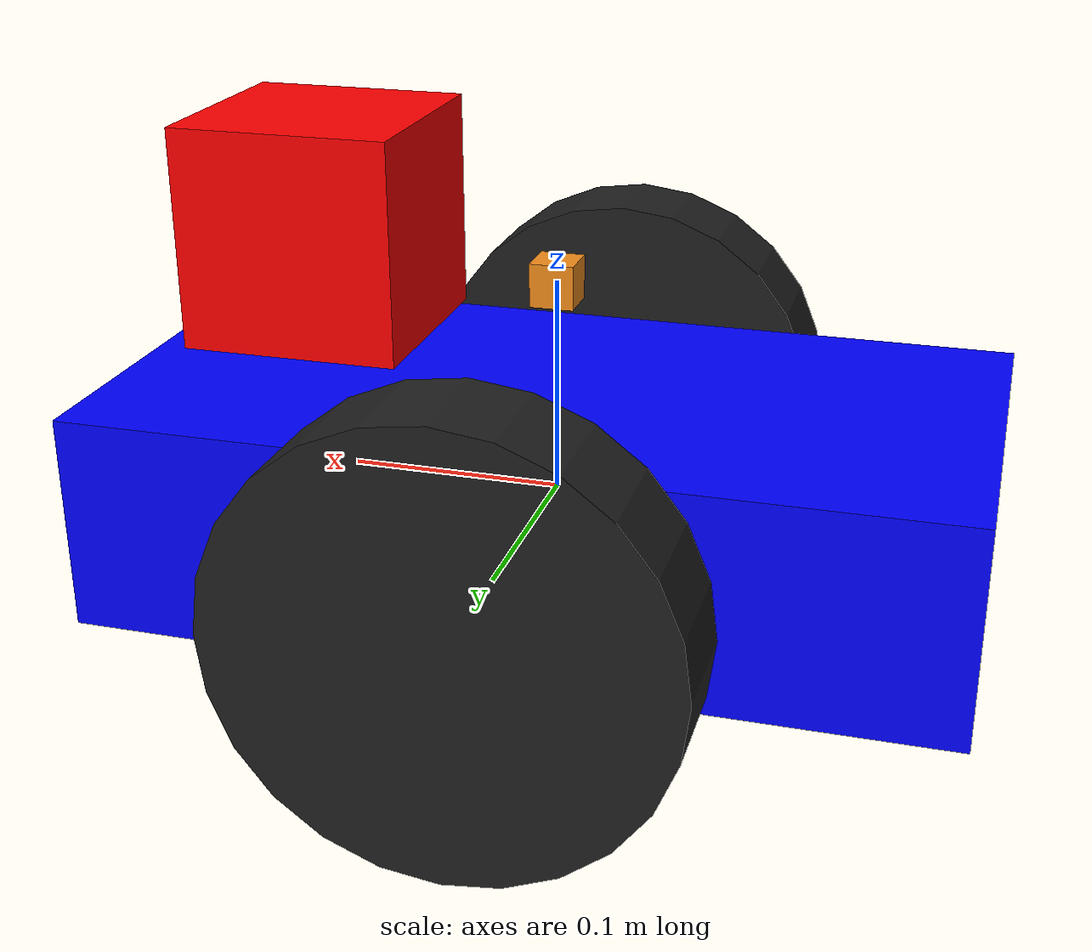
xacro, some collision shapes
<?xml version='1.0'?>

<robot name="diffrobot" xmlns:xacro="http://www.ros.org/wiki/xacro">

    <xacro:include filename="$(find diffrobot_description)/urdf/diffrobot.gazebo"/>

    <link name="robot_footprint"/>

    <joint name="robot_footprint_joint" type="fixed">
        <origin xyz="0 0 0.0" rpy="0 0 0" />
        <parent link="robot_footprint"/>
        <child link="base_link"/>
    </joint>

    <link name="base_link">
        <inertial>
            <origin xyz="0.0 0.0 0.0" rpy="0.0 0.0 0.0"/>
            <mass value="5.0"/>
            <inertia ixx="0.0" ixy="0.0" ixz="0.0" iyy="0.0" iyz="0.0" izz="0.0"/>
        </inertial>
        <visual name="base_link_visual">
            <origin xyz="0.0 0.0 0.0" rpy="0.0 0.0 0.0"/>
            <geometry>
                <box size="0.4 0.2 0.1"/>
            </geometry>
            <material name="">
                <color rgba="0.0 0.0 1.0 1.0"/>
                <texture filename=""/>
            </material>
        </visual>
        <collision>
            <origin xyz="0.0 0.0 0.0" rpy="0.0 0.0 0.0"/>
            <geometry>
                <box size="0.4 0.2 0.1"/>
            </geometry>
        </collision>
    </link>

    <link name="left_wheel">
        <inertial>
            <origin xyz="0.0 0.0 0.0" rpy="0.0 1.5707 1.5707"/>
            <mass value="5.0"/>
            <inertia ixx="0.1" ixy="0.0" ixz="0.0" iyy="0.1" iyz="0.0" izz="0.1"/>
        </inertial>
        <visual name="left_wheel_visual">
            <origin xyz="0.0 0.0 0.0" rpy="0.0 0.0 0.0"/>
            <geometry>
                <cylinder radius="0.1" length="0.05"/>
            </geometry>
        </visual>
        <collision name='left_wheel_collision'>
            <origin xyz="0.0 0.0 0.0" rpy="0.0 0.0 0.0"/>
            <geometry>
                <cylinder radius="0.1" length="0.05"/>
            </geometry>
        </collision>
    </link>

    <link name="right_wheel">
        <inertial>
            <origin xyz="0.0 0.0 0.0" rpy="0.0 0.0 0.0"/>
            <mass value="5.0"/>
            <inertia ixx="0.1" ixy="0.0" ixz="0.0" iyy="0.1" iyz="0.0" izz="0.1"/>
        </inertial>
        <visual name="right_wheel_visual">
            <origin xyz="0.0 0.0 0.0" rpy="0.0 0.0 0.0"/>
            <geometry>
                <cylinder radius="0.1" length="0.05"/>
            </geometry>
        </visual>
        <collision name='right_wheel_collision'>
            <origin xyz="0.0 0.0 0.0" rpy="0.0 0.0 0.0"/>
            <geometry>
                <cylinder radius="0.1" length="0.05"/>
            </geometry>
        </collision>
    </link>

    <joint name="wheel_left_joint" type="continuous">
        <origin xyz="0.0 0.15 0.0" rpy="0.0 1.5705 1.5705"/>
        <parent link="base_link"/>
        <child link="left_wheel"/>
        <axis xyz="0.0 0.0 1.0"/>

    </joint>

    <joint name="wheel_right_joint" type="continuous">
        <origin xyz="0.0 -0.15 0.0" rpy="0.0 1.5705 1.5705"/>
        <parent link="base_link"/>
        <child link="right_wheel"/>
        <axis xyz="0.0 0.0 1.0"/>

    </joint>

    <link name="front_caster">
        <inertial>
            <origin xyz="0.0 0.0 0.0" rpy="0.0 0.0 0.0"/>
            <mass value="0.0"/>
            <inertia ixx="0.0" ixy="0.0" ixz="0.0" iyy="0.0" iyz="0.0" izz="0.0"/>
        </inertial>
        <visual name="front_caster_visual">
            <origin xyz="0.0 0.0 0.0" rpy="0.0 0.0 0.0"/>
            <geometry>
                <sphere radius="0.0499"/>
            </geometry>
            <material name="">
                <color rgba="1.0 1.0 1.0 1.0"/>
                <texture filename=""/>
            </material>
        </visual>
        <collision>
            <origin xyz="0.0 0.0 0.0" rpy="0.0 0.0 0.0"/>
            <geometry>
                <sphere radius="0.0499"/>
            </geometry>
        </collision>
    </link>

    <joint name="front_caster_joint" type="fixed">
        <origin xyz="0.15 0.0 -0.05" rpy="0.0 0.0 0.0"/>
        <parent link="base_link"/>
        <child link="front_caster"/>
        <axis xyz="0.0 0.0 0.0"/>
    </joint>

 <link name="back_caster">
        <inertial>
            <origin xyz="0.0 0.0 0.0" rpy="0.0 0.0 0.0"/>
            <mass value="0.0"/>
            <inertia ixx="0.0" ixy="0.0" ixz="0.0" iyy="0.0" iyz="0.0" izz="0.0"/>
        </inertial>
        <visual name="back_caster_visual">
            <origin xyz="0.0 0.0 0.0" rpy="0.0 0.0 0.0"/>
            <geometry>
                <sphere radius="0.0499"/>
            </geometry>
            <material name="">
                <color rgba="1.0 1.0 1.0 1.0"/>
                <texture filename=""/>
            </material>
        </visual>
        <collision>
            <origin xyz="0.0 0.0 0.0" rpy="0.0 0.0 0.0"/>
            <geometry>
                <sphere radius="0.0499"/>
            </geometry>
        </collision>
    </link>

    <joint name="back_caster_joint" type="fixed">
        <origin xyz="-0.15 0.0 -0.05" rpy="0.0 0.0 0.0"/>
        <parent link="base_link"/>
        <child link="back_caster"/>
        <axis xyz="0.0 0.0 0.0"/>
    </joint>

    <link name="lidar_link">
        <inertial>
            <origin xyz="0.0 0.0 0.0" rpy="0.0 0.0 0.0"/>
            <mass value="0.1"/>
            <inertia ixx="0.0" ixy="0.0" ixz="0.0" iyy="0.0" iyz="0.0" izz="0.0"/>
        </inertial>
        <visual name="lidar_link_visual">
            <origin xyz="0.0 0.0 0.0" rpy="0.0 0.0 0.0"/>
            <geometry>
                <mesh filename="package://diffrobot_description/meshes/lidar_link.STL"/>
            </geometry>
            <material name="">
                <color rgba="1.0 0.0 0.0 1.0"/>
                <texture filename=""/>
            </material>
        </visual>
        <collision>
            <origin xyz="0.0 0.0 0.0" rpy="0.0 0.0 0.0"/>
            <geometry>
                <box size="0.1 0.1 0.1"/>
            </geometry>
        </collision>
    </link>

    <joint name="lidar_joint" type="fixed">
        <origin xyz="0.11 0.0 0.12" rpy="1.5708 0.0 1.5708"/>
        <parent link="base_link"/>
        <child link="lidar_link"/>
    </joint>

    <link name="laser">

    </link>

    <joint name="laser_data_joint" type="fixed">
        <origin xyz="0.0 0.0 0.0" rpy="0.0 -1.5708 -1.5708"/>
        <parent link="lidar_link"/>
        <child link="laser"/>
    </joint>

    <link name="gps_link">
        <collision>
        <origin xyz="0 0 0.1" rpy="0 0 0"/>
        <geometry>
            <box size="0.02 0.02 0.02"/>
        </geometry>
        </collision>

        <visual>
        <origin xyz="0 0 0.1" rpy="0 0 0"/>
        <geometry>
            <box size="0.02 0.02 0.02"/>
        </geometry>
        <material name="orange"/>
        </visual>

        <inertial>
        <origin xyz="0 0 1" rpy="0 0 0"/>
        <mass value="1"/>
        <inertia
            ixx="1.0" ixy="0.0" ixz="0.0"
            iyy="1.0" iyz="0.0"
            izz="1.0"/>
        </inertial>
    </link>
    <joint name="gps_joint" type="fixed">
        <origin xyz="0.0 0.0 0.0" rpy="0.0 0.0 0.0"/>
        <parent link="base_link"/>
        <child link="gps_link"/>
    </joint>

    <link name="imu_link">
        <collision>
        <origin xyz="0 0 0.1" rpy="0 0 0"/>
        <geometry>
            <box size="0.02 0.02 0.02"/>
        </geometry>
        </collision>

        <visual>
        <origin xyz="0 0 0.1" rpy="0 0 0"/>
        <geometry>
            <box size="0.02 0.02 0.02"/>
        </geometry>
        <material name="orange"/>
        </visual>

        <inertial>
        <origin xyz="0 0 1" rpy="0 0 0"/>
        <mass value="1"/>
        <inertia
            ixx="1.0" ixy="0.0" ixz="0.0"
            iyy="1.0" iyz="0.0"
            izz="1.0"/>
        </inertial>
    </link>
    <joint name="imu_joint" type="fixed">
        <origin xyz="0.0 0.0 0.0" rpy="0.0 0.0 0.0"/>
        <parent link="base_link"/>
        <child link="imu_link"/>
    </joint>

</robot>
